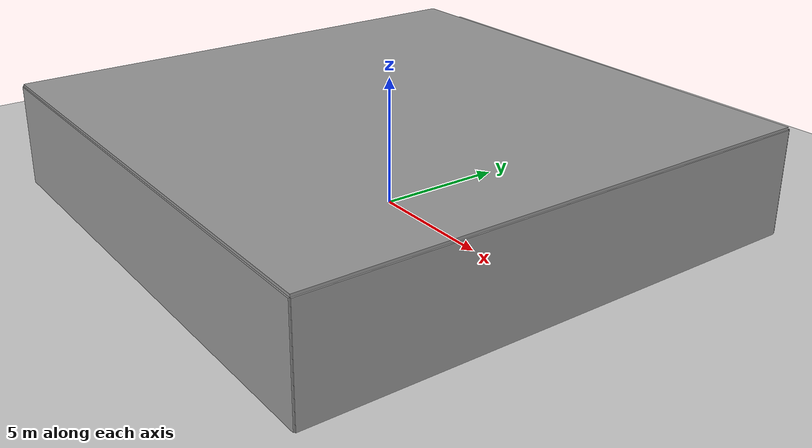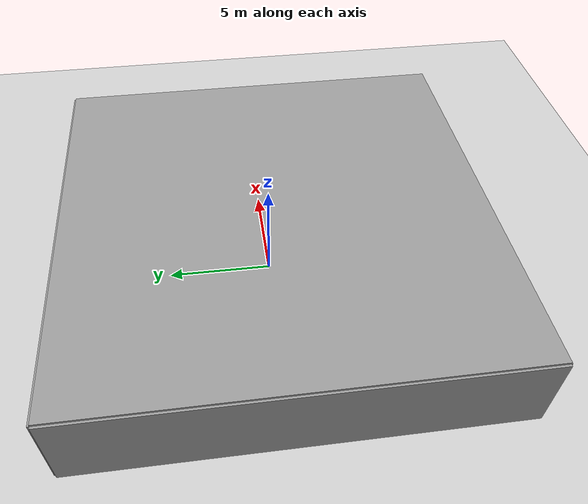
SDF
<sdf version="1.6">
 <world name="default">
  <light name="sun" type="directional">
   <pose>0 0 10 0 -0 0</pose>
   <diffuse>0.8 0.8 0.8 1</diffuse>
   <specular>0.2 0.2 0.2 1</specular>
   <attenuation>
    <range>1000</range>
    <constant>0.9</constant>
    <linear>0.01</linear>
    <quadratic>0.001</quadratic>
   </attenuation>
   <direction>-0.5 0.1 -0.9</direction>
  </light>
  <model name="ground_plane">
   <static>1</static>
   <link name="link">
    <collision name="collision">
     <geometry><plane><normal>0 0 1</normal><size>100 100</size></plane></geometry>
     <surface><friction><ode><mu>100</mu><mu2>50</mu2></ode></friction></surface>
    </collision>
    <visual name="visual">
     <cast_shadows>0</cast_shadows>
     <geometry><plane><normal>0 0 1</normal><size>100 100</size></plane></geometry>
     <material>
      <script><uri>file://media/materials/scripts/gazebo.material</uri><name>Gazebo/Grey</name></script>
     </material>
    </visual>
   </link>
  </model>
  <gravity>0 0 -9.8</gravity>
  <magnetic_field>6e-06 2.3e-05 -4.2e-05</magnetic_field>
  <atmosphere type="adiabatic"/>
  <physics name="default_physics" default="0" type="ode">
   <max_step_size>0.001</max_step_size>
   <real_time_factor>1</real_time_factor>
   <real_time_update_rate>1000</real_time_update_rate>
  </physics>
  <scene><ambient>0.4 0.4 0.4 1</ambient><background>0.7 0.7 0.7 1</background><shadows>0</shadows></scene>
  <spherical_coordinates>
   <surface_model>EARTH_WGS84</surface_model>
   <latitude_deg>0</latitude_deg>
   <longitude_deg>0</longitude_deg>
   <elevation>0</elevation>
   <heading_deg>0</heading_deg>
  </spherical_coordinates>
  <model name="four_walls">
   <static>1</static>
   <link name="Ceiling">
    <collision name="Ceiling_Collision"><geometry><box><size>20 20 0.1</size></box></geometry></collision>
    <visual name="Ceiling_Visual">
     <geometry><box><size>20 20 0.1</size></box></geometry>
     <material>
      <script><uri>file://media/materials/scripts/gazebo.material</uri><name>Gazebo/Grey</name></script>
     </material>
    </visual>
    <pose>0 0 4.05 0 -0 0</pose>
   </link>
   <link name="Wall_South">
    <collision name="Wall_South_Collision">
     <geometry><box><size>20 0.1 4</size></box></geometry>
     <pose>0 0 2 0 -0 0</pose>
    </collision>
    <visual name="Wall_South_Visual">
     <pose>0 0 2 0 -0 0</pose>
     <geometry><box><size>20 0.1 4</size></box></geometry>
     <material>
      <script><uri>file://media/materials/scripts/gazebo.material</uri><name>Gazebo/Grey</name></script>
     </material>
    </visual>
    <velocity_decay><linear>0</linear><angular>0</angular></velocity_decay>
    <pose>0 -10 0 0 -0 0</pose>
   </link>
   <link name="Wall_East">
    <collision name="Wall_21_Collision">
     <geometry><box><size>20 0.1 4</size></box></geometry>
     <pose>0 0 2 0 -0 0</pose>
    </collision>
    <visual name="Wall_21_Visual">
     <pose>0 0 2 0 -0 0</pose>
     <geometry><box><size>20 0.1 4</size></box></geometry>
     <material>
      <script><uri>file://media/materials/scripts/gazebo.material</uri><name>Gazebo/Grey</name></script>
     </material>
    </visual>
    <velocity_decay><linear>0</linear><angular>0</angular></velocity_decay>
    <pose>10 0 0 0 -0 1.5708</pose>
   </link>
   <link name="Wall_North">
    <collision name="Wall_22_Collision">
     <geometry><box><size>20 0.2 4</size></box></geometry>
     <pose>0 0 2 0 -0 0</pose>
    </collision>
    <visual name="Wall_22_Visual">
     <pose>0 0 2 0 -0 0</pose>
     <geometry><box><size>20 0.2 4</size></box></geometry>
     <material>
      <script><uri>file://media/materials/scripts/gazebo.material</uri><name>Gazebo/Grey</name></script>
     </material>
    </visual>
    <velocity_decay><linear>0</linear><angular>0</angular></velocity_decay>
    <pose>0 10 0 0 -0 0</pose>
   </link>
   <link name="Wall_West">
    <collision name="Wall_23_Collision">
     <geometry><box><size>20 0.2 4</size></box></geometry>
     <pose>0 0 2 0 -0 0</pose>
    </collision>
    <visual name="Wall_23_Visual">
     <pose>0 0 2 0 -0 0</pose>
     <geometry><box><size>20 0.2 4</size></box></geometry>
     <material>
      <script><uri>file://media/materials/scripts/gazebo.material</uri><name>Gazebo/Grey</name></script>
     </material>
    </visual>
    <velocity_decay><linear>0</linear><angular>0</angular></velocity_decay>
    <pose>-10 0 0 0 0 -1.5708</pose>
   </link>
   <link name="Ground_link">
    <collision name="collision">
     <pose>0 0 0.05 0 -0 0</pose>
     <geometry><box><size>20 20 0.1</size></box></geometry>
    </collision>
    <visual name="visual">
     <pose>0 0 0.05 0 -0 0</pose>
     <geometry><box><size>20 20 0.1</size></box></geometry>
     <material>
      <script><uri>file://media/materials/scripts/gazebo.material</uri><name>Gazebo/Road</name></script>
     </material>
    </visual>
   </link>
   <pose>0.205996 -0.361878 0 0 -0 0</pose>
  </model>
 </world>
</sdf>
